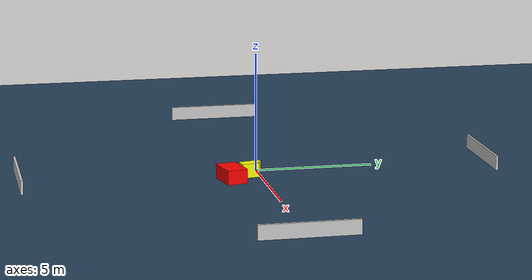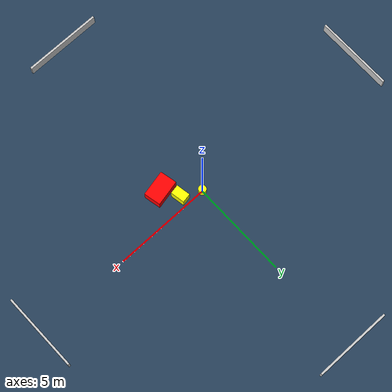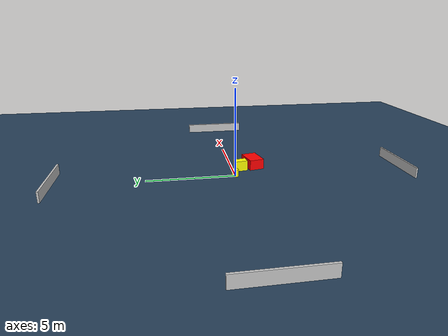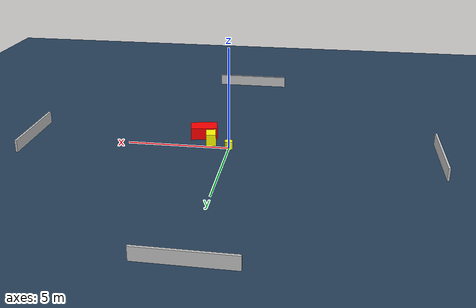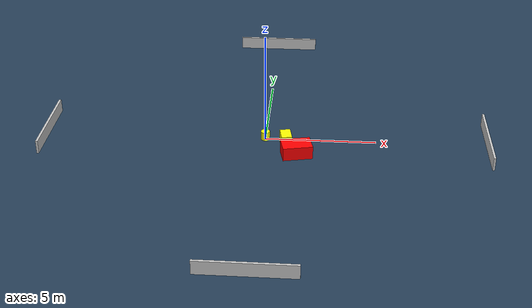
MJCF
<?xml version="1.0" ?>
<mujoco model="generated_environment">
  <option timestep="0.01" integrator="RK4" cone="elliptic"/>
  <default>
    <geom density="1"/>
  </default>
  <asset>
    <texture builtin="gradient" height="3072" name="skybox" rgb1="0.3 0.5 0.7" rgb2="0 0 0" type="skybox" width="512"/>
    <texture builtin="checker" height="300" name="groundplane" rgb1="0.2 0.3 0.4" rgb2="0.1 0.2 0.3" type="2d" width="300"/>
    <material name="groundplane" reflectance="0.2" texrepeat="5 5" texture="groundplane"/>
  </asset>
  <worldbody>
    <light dir="0 0 -1" directional="true" pos="0 0 1.5"/>
    <geom condim="3" friction="0.5 0.005 0.001" material="groundplane" name="floor" pos="0 0 0" size="0 0 0.05" type="plane"/>
    <body name="walls">
      <geom name="wall_1" condim="4" pos="-10.0 0.0 0.3" rgba="0.800000011920929 0.800000011920929 0.800000011920929 1.0" size="0.05 2.0 0.3" type="box"/>
      <geom name="wall_2" condim="4" pos="10.0 0.0 0.3" rgba="0.800000011920929 0.800000011920929 0.800000011920929 1.0" size="0.05 2.0 0.3" type="box"/>
      <geom name="wall_3" condim="4" pos="0.0 -10.0 0.3" rgba="0.800000011920929 0.800000011920929 0.800000011920929 1.0" size="2.0 0.05 0.3" type="box"/>
      <geom name="wall_4" condim="4" pos="0.0 10.0 0.3" rgba="0.800000011920929 0.800000011920929 0.800000011920929 1.0" size="2.0 0.05 0.3" type="box"/>
    </body>
    <body name="robot">
      <joint name="joint_x" type="slide" pos="0 0 0" axis="1 0 0"/>
      <joint name="joint_y" type="slide" pos="0 0 0" axis="0 1 0"/>
      <geom name="robot" type="cylinder" pos="0.0 0.0 0.2" size="0.2 0.2 0.0" mass="5.0" friction="1.0 0.005 0.0001" condim="4" rgba="1.0 1.0 0.0 1.0"/>
    </body>
    <body name="obstacle_1_movable">
      <geom name="obstacle_1_movable" condim="4" pos="0.9525048590835852 -0.4839682889654313 0.3" euler="0 0 99.98539074518024" friction="0.0 0.005 0.001" rgba="1.0 1.0 0.0 1.0" size="0.36282560962778865 0.2356525012210024 0.3" type="box" mass="0.1"/>
      <joint type="free"/>
    </body>
    <body name="obstacle_2_static">
      <geom name="obstacle_2_static" condim="4" pos="1.4597401605080134 -1.3201724348569286 0.3" euler="0 0 102.04452520126593" friction="0.0 0.005 0.001" rgba="1.0 0.0 0.0 1.0" size="0.4344187910695727 0.6628112037570766 0.3" type="box"/>
    </body>
  </worldbody>
  <actuator>
    <motor name="actuator_x" joint="joint_x" gear="1" ctrlrange="-1 1"/>
    <motor name="actuator_y" joint="joint_y" gear="1" ctrlrange="-1 1"/>
  </actuator>
</mujoco>
